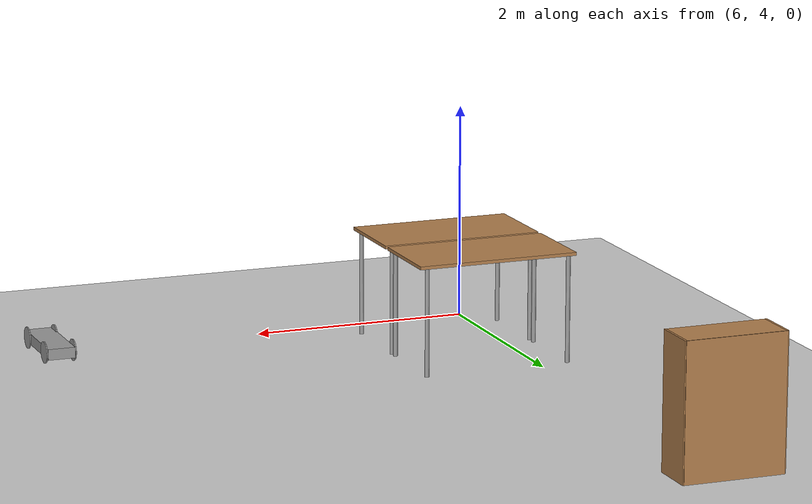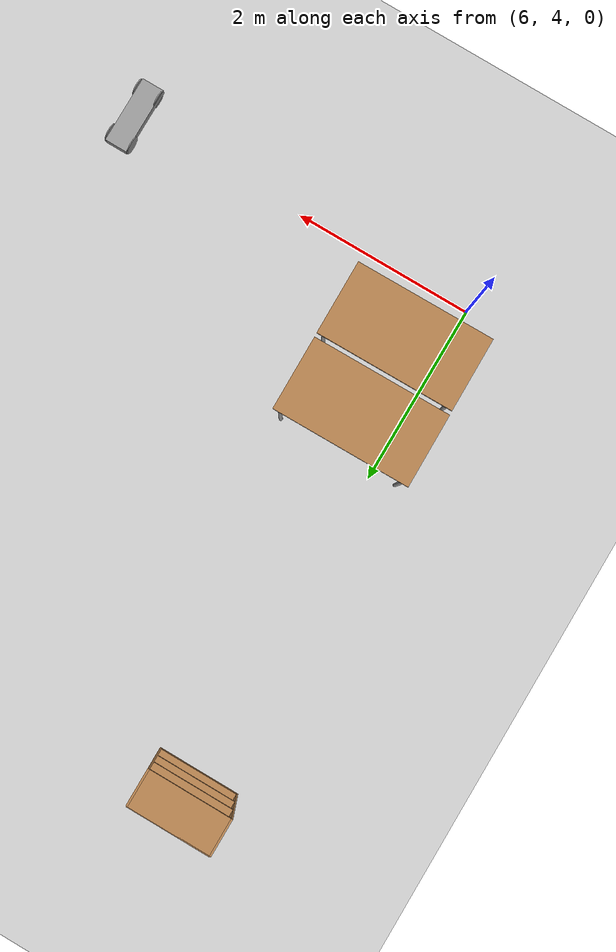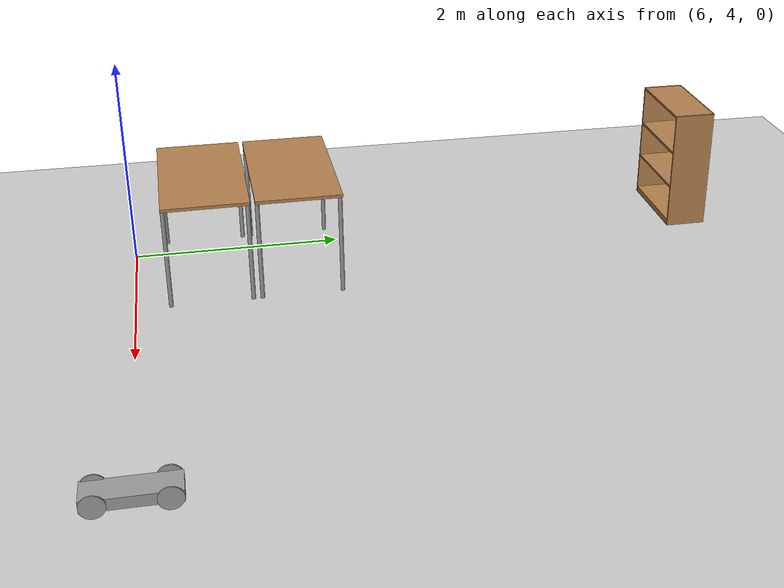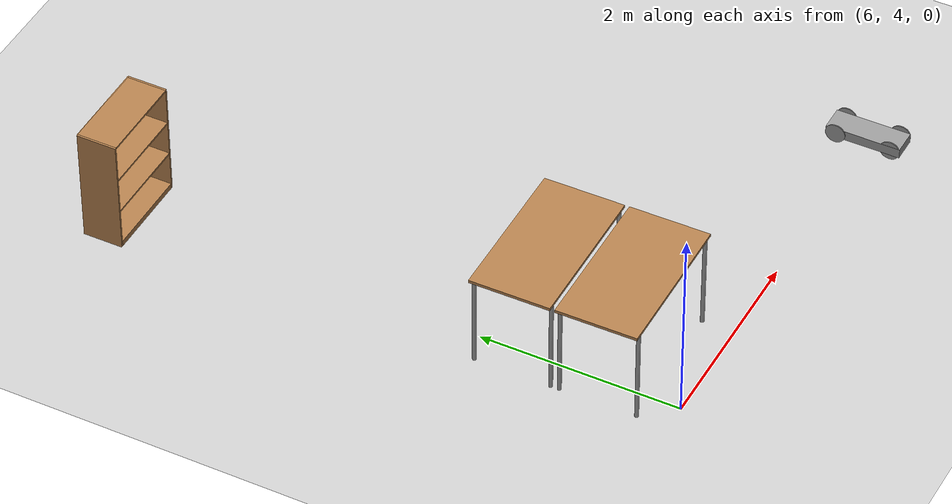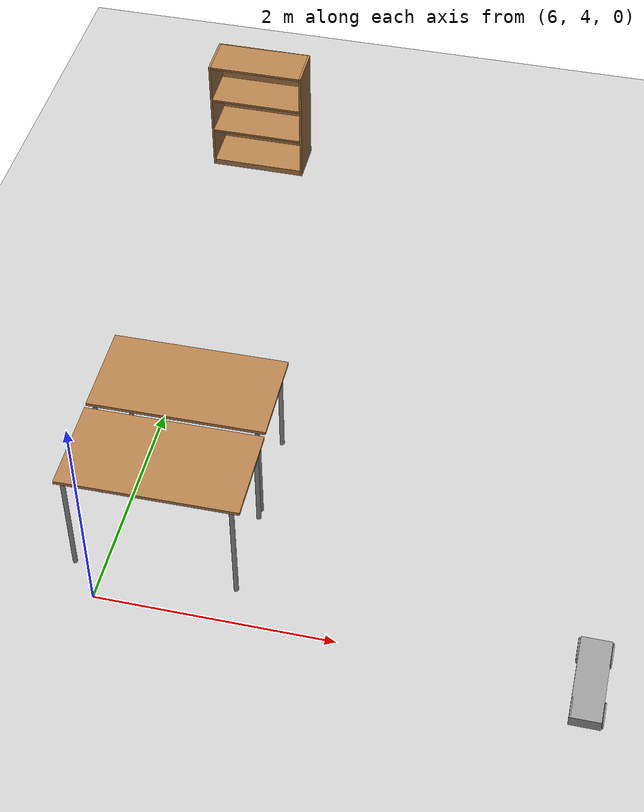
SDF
<sdf version="1.6">
 <world name="default">
  <model name="ground_plane">
   <static>1</static>
   <link name="link">
    <collision name="collision">
     <geometry><plane><normal>0 0 1</normal><size>100 100</size></plane></geometry>
     <surface>
      <contact><collide_bitmask>65535</collide_bitmask></contact>
      <friction><ode><mu>100</mu><mu2>50</mu2></ode></friction>
     </surface>
    </collision>
    <visual name="visual">
     <cast_shadows>0</cast_shadows>
     <geometry><plane><normal>0 0 1</normal><size>100 100</size></plane></geometry>
     <material>
      <script><uri>file://media/materials/scripts/gazebo.material</uri><name>Gazebo/Grey</name></script>
     </material>
    </visual>
   </link>
  </model>
  <model name="bookshelf">
   <static>1</static>
   <link name="link">
    <inertial><mass>1</mass></inertial>
    <collision name="back">
     <pose>0 0.005 0.6 0 -0 0</pose>
     <geometry><box><size>0.9 0.01 1.2</size></box></geometry>
    </collision>
    <visual name="visual1">
     <pose>0 0.005 0.6 0 -0 0</pose>
     <geometry><box><size>0.9 0.01 1.2</size></box></geometry>
     <material>
      <script><uri>file://media/materials/scripts/gazebo.material</uri><name>Gazebo/Wood</name></script>
     </material>
    </visual>
    <collision name="left_side">
     <pose>0.45 -0.195 0.6 0 -0 0</pose>
     <geometry><box><size>0.02 0.4 1.2</size></box></geometry>
    </collision>
    <visual name="visual2">
     <pose>0.45 -0.195 0.6 0 -0 0</pose>
     <geometry><box><size>0.02 0.4 1.2</size></box></geometry>
     <material>
      <script><uri>file://media/materials/scripts/gazebo.material</uri><name>Gazebo/Wood</name></script>
     </material>
    </visual>
    <collision name="right_side">
     <pose>-0.45 -0.195 0.6 0 -0 0</pose>
     <geometry><box><size>0.02 0.4 1.2</size></box></geometry>
    </collision>
    <visual name="visual3">
     <pose>-0.45 -0.195 0.6 0 -0 0</pose>
     <geometry><box><size>0.02 0.4 1.2</size></box></geometry>
     <material>
      <script><uri>file://media/materials/scripts/gazebo.material</uri><name>Gazebo/Wood</name></script>
     </material>
    </visual>
    <collision name="bottom">
     <pose>0 -0.195 0.03 0 -0 0</pose>
     <geometry><box><size>0.88 0.4 0.06</size></box></geometry>
    </collision>
    <visual name="visual4">
     <pose>0 -0.195 0.03 0 -0 0</pose>
     <geometry><box><size>0.88 0.4 0.06</size></box></geometry>
     <material>
      <script><uri>file://media/materials/scripts/gazebo.material</uri><name>Gazebo/Wood</name></script>
     </material>
    </visual>
    <collision name="top">
     <pose>0 -0.195 1.19 0 -0 0</pose>
     <geometry><box><size>0.88 0.4 0.02</size></box></geometry>
    </collision>
    <visual name="visual5">
     <pose>0 -0.195 1.19 0 -0 0</pose>
     <geometry><box><size>0.88 0.4 0.02</size></box></geometry>
     <material>
      <script><uri>file://media/materials/scripts/gazebo.material</uri><name>Gazebo/Wood</name></script>
     </material>
    </visual>
    <collision name="low_shelf">
     <pose>0 -0.195 0.43 0 -0 0</pose>
     <geometry><box><size>0.88 0.4 0.02</size></box></geometry>
    </collision>
    <visual name="visual6">
     <pose>0 -0.195 0.43 0 -0 0</pose>
     <geometry><box><size>0.88 0.4 0.02</size></box></geometry>
     <material>
      <script><uri>file://media/materials/scripts/gazebo.material</uri><name>Gazebo/Wood</name></script>
     </material>
    </visual>
    <collision name="high_shelf">
     <pose>0 -0.195 0.8 0 -0 0</pose>
     <geometry><box><size>0.88 0.4 0.02</size></box></geometry>
    </collision>
    <visual name="visual7">
     <pose>0 -0.195 0.8 0 -0 0</pose>
     <geometry><box><size>0.88 0.4 0.02</size></box></geometry>
     <material>
      <script><uri>file://media/materials/scripts/gazebo.material</uri><name>Gazebo/Wood</name></script>
     </material>
    </visual>
   </link>
   <pose>5.96907 9.82369 0.04156 0 -0 0</pose>
  </model>
  <model name="table_clone_2_clone">
   <static>1</static>
   <link name="link">
    <collision name="surface">
     <pose>0 0 1 0 -0 0</pose>
     <geometry><box><size>1.5 0.8 0.03</size></box></geometry>
     <surface><friction><ode><mu>0.6</mu><mu2>0.6</mu2></ode></friction></surface>
    </collision>
    <visual name="visual1">
     <pose>0 0 1 0 -0 0</pose>
     <geometry><box><size>1.5 0.8 0.03</size></box></geometry>
     <material>
      <script><uri>file://media/materials/scripts/gazebo.material</uri><name>Gazebo/Wood</name></script>
     </material>
    </visual>
    <collision name="front_left_leg">
     <pose>0.68 0.38 0.5 0 -0 0</pose>
     <geometry><cylinder><radius>0.02</radius><length>1</length></cylinder></geometry>
    </collision>
    <visual name="front_left_leg">
     <pose>0.68 0.38 0.5 0 -0 0</pose>
     <geometry><cylinder><radius>0.02</radius><length>1</length></cylinder></geometry>
     <material>
      <script><uri>file://media/materials/scripts/gazebo.material</uri><name>Gazebo/Grey</name></script>
     </material>
    </visual>
    <collision name="front_right_leg">
     <pose>0.68 -0.38 0.5 0 -0 0</pose>
     <geometry><cylinder><radius>0.02</radius><length>1</length></cylinder></geometry>
    </collision>
    <visual name="front_right_leg">
     <pose>0.68 -0.38 0.5 0 -0 0</pose>
     <geometry><cylinder><radius>0.02</radius><length>1</length></cylinder></geometry>
     <material>
      <script><uri>file://media/materials/scripts/gazebo.material</uri><name>Gazebo/Grey</name></script>
     </material>
    </visual>
    <collision name="back_right_leg">
     <pose>-0.68 -0.38 0.5 0 -0 0</pose>
     <geometry><cylinder><radius>0.02</radius><length>1</length></cylinder></geometry>
    </collision>
    <visual name="back_right_leg">
     <pose>-0.68 -0.38 0.5 0 -0 0</pose>
     <geometry><cylinder><radius>0.02</radius><length>1</length></cylinder></geometry>
     <material>
      <script><uri>file://media/materials/scripts/gazebo.material</uri><name>Gazebo/Grey</name></script>
     </material>
    </visual>
    <collision name="back_left_leg">
     <pose>-0.68 0.38 0.5 0 -0 0</pose>
     <geometry><cylinder><radius>0.02</radius><length>1</length></cylinder></geometry>
    </collision>
    <visual name="back_left_leg">
     <pose>-0.68 0.38 0.5 0 -0 0</pose>
     <geometry><cylinder><radius>0.02</radius><length>1</length></cylinder></geometry>
     <material>
      <script><uri>file://media/materials/scripts/gazebo.material</uri><name>Gazebo/Grey</name></script>
     </material>
    </visual>
   </link>
   <pose>6.42073 4.69703 0 0 -0 0.008376</pose>
  </model>
  <model name="table_clone_2_clone_0">
   <static>1</static>
   <link name="link">
    <collision name="surface">
     <pose>0 0 1 0 -0 0</pose>
     <geometry><box><size>1.5 0.8 0.03</size></box></geometry>
     <surface><friction><ode><mu>0.6</mu><mu2>0.6</mu2></ode></friction></surface>
    </collision>
    <visual name="visual1">
     <pose>0 0 1 0 -0 0</pose>
     <geometry><box><size>1.5 0.8 0.03</size></box></geometry>
     <material>
      <script><uri>file://media/materials/scripts/gazebo.material</uri><name>Gazebo/Wood</name></script>
     </material>
    </visual>
    <collision name="front_left_leg">
     <pose>0.68 0.38 0.5 0 -0 0</pose>
     <geometry><cylinder><radius>0.02</radius><length>1</length></cylinder></geometry>
    </collision>
    <visual name="front_left_leg">
     <pose>0.68 0.38 0.5 0 -0 0</pose>
     <geometry><cylinder><radius>0.02</radius><length>1</length></cylinder></geometry>
     <material>
      <script><uri>file://media/materials/scripts/gazebo.material</uri><name>Gazebo/Grey</name></script>
     </material>
    </visual>
    <collision name="front_right_leg">
     <pose>0.68 -0.38 0.5 0 -0 0</pose>
     <geometry><cylinder><radius>0.02</radius><length>1</length></cylinder></geometry>
    </collision>
    <visual name="front_right_leg">
     <pose>0.68 -0.38 0.5 0 -0 0</pose>
     <geometry><cylinder><radius>0.02</radius><length>1</length></cylinder></geometry>
     <material>
      <script><uri>file://media/materials/scripts/gazebo.material</uri><name>Gazebo/Grey</name></script>
     </material>
    </visual>
    <collision name="back_right_leg">
     <pose>-0.68 -0.38 0.5 0 -0 0</pose>
     <geometry><cylinder><radius>0.02</radius><length>1</length></cylinder></geometry>
    </collision>
    <visual name="back_right_leg">
     <pose>-0.68 -0.38 0.5 0 -0 0</pose>
     <geometry><cylinder><radius>0.02</radius><length>1</length></cylinder></geometry>
     <material>
      <script><uri>file://media/materials/scripts/gazebo.material</uri><name>Gazebo/Grey</name></script>
     </material>
    </visual>
    <collision name="back_left_leg">
     <pose>-0.68 0.38 0.5 0 -0 0</pose>
     <geometry><cylinder><radius>0.02</radius><length>1</length></cylinder></geometry>
    </collision>
    <visual name="back_left_leg">
     <pose>-0.68 0.38 0.5 0 -0 0</pose>
     <geometry><cylinder><radius>0.02</radius><length>1</length></cylinder></geometry>
     <material>
      <script><uri>file://media/materials/scripts/gazebo.material</uri><name>Gazebo/Grey</name></script>
     </material>
    </visual>
   </link>
   <pose>6.41159 5.54172 0 0 -0 0.008376</pose>
  </model>
  <model name="robot_1">
   <link name="link_0">
    <pose>-0.00309 4e-06 1e-06 0 -0 0</pose>
    <inertial>
     <mass>1</mass>
     <inertia>
      <ixx>0.166667</ixx>
      <ixy>0</ixy>
      <ixz>0</ixz>
      <iyy>0.166667</iyy>
      <iyz>0</iyz>
      <izz>0.166667</izz>
     </inertia>
    </inertial>
    <visual name="visual">
     <geometry><box><size>0.25 0.75 0.1</size></box></geometry>
     <material>
      <lighting>1</lighting>
      <script><uri>file://media/materials/scripts/gazebo.material</uri><name>Gazebo/Grey</name></script>
      <shader type="pixel"><normal_map>__default__</normal_map></shader>
      <ambient>0.3 0.3 0.3 1</ambient>
      <diffuse>0.7 0.7 0.7 1</diffuse>
      <specular>0.01 0.01 0.01 1</specular>
      <emissive>0 0 0 1</emissive>
     </material>
    </visual>
    <collision name="collision">
     <geometry><box><size>0.25 0.75 0.1</size></box></geometry>
     <surface>
      <friction>
       <ode><mu>1</mu><mu2>1</mu2><fdir1>0 0 0</fdir1><slip1>0</slip1><slip2>0</slip2></ode>
       <torsional>
        <coefficient>1</coefficient>
        <patch_radius>0</patch_radius>
        <surface_radius>0</surface_radius>
        <use_patch_radius>1</use_patch_radius>
        <ode><slip>0</slip></ode>
       </torsional>
      </friction>
      <bounce><restitution_coefficient>0</restitution_coefficient><threshold>1e+06</threshold></bounce>
      <contact>
       <collide_without_contact>0</collide_without_contact>
       <collide_without_contact_bitmask>1</collide_without_contact_bitmask>
       <collide_bitmask>1</collide_bitmask>
       <ode>
        <soft_cfm>0</soft_cfm>
        <soft_erp>0.2</soft_erp>
        <kp>1e+13</kp>
        <kd>1</kd>
        <max_vel>0.01</max_vel>
        <min_depth>0</min_depth>
       </ode>
       <bullet>
        <split_impulse>1</split_impulse>
        <split_impulse_penetration_threshold>-0.01</split_impulse_penetration_threshold>
        <soft_cfm>0</soft_cfm>
        <soft_erp>0.2</soft_erp>
        <kp>1e+13</kp>
        <kd>1</kd>
       </bullet>
      </contact>
     </surface>
    </collision>
   </link>
   <link name="link_1">
    <pose>-0.13658 0.274921 0 1.57079 -9.6e-05 -1.56015</pose>
    <inertial>
     <mass>1</mass>
     <inertia><ixx>0.145833</ixx><ixy>0</ixy><ixz>0</ixz><iyy>0.145833</iyy><iyz>0</iyz><izz>0.125</izz></inertia>
    </inertial>
    <visual name="visual">
     <geometry><cylinder><radius>0.1</radius><length>0.01</length></cylinder></geometry>
     <material>
      <lighting>1</lighting>
      <script><uri>file://media/materials/scripts/gazebo.material</uri><name>Gazebo/Grey</name></script>
      <shader type="pixel"><normal_map>__default__</normal_map></shader>
      <ambient>0.3 0.3 0.3 1</ambient>
      <diffuse>0.7 0.7 0.7 1</diffuse>
      <specular>0.01 0.01 0.01 1</specular>
      <emissive>0 0 0 1</emissive>
     </material>
    </visual>
    <collision name="collision">
     <geometry><cylinder><radius>0.1</radius><length>0.01</length></cylinder></geometry>
     <surface>
      <friction>
       <ode><mu>1</mu><mu2>1</mu2><fdir1>0 0 0</fdir1><slip1>0</slip1><slip2>0</slip2></ode>
       <torsional>
        <coefficient>1</coefficient>
        <patch_radius>0</patch_radius>
        <surface_radius>0</surface_radius>
        <use_patch_radius>1</use_patch_radius>
        <ode><slip>0</slip></ode>
       </torsional>
      </friction>
      <bounce><restitution_coefficient>0</restitution_coefficient><threshold>1e+06</threshold></bounce>
      <contact>
       <collide_without_contact>0</collide_without_contact>
       <collide_without_contact_bitmask>1</collide_without_contact_bitmask>
       <collide_bitmask>1</collide_bitmask>
       <ode>
        <soft_cfm>0</soft_cfm>
        <soft_erp>0.2</soft_erp>
        <kp>1e+13</kp>
        <kd>1</kd>
        <max_vel>0.01</max_vel>
        <min_depth>0</min_depth>
       </ode>
       <bullet>
        <split_impulse>1</split_impulse>
        <split_impulse_penetration_threshold>-0.01</split_impulse_penetration_threshold>
        <soft_cfm>0</soft_cfm>
        <soft_erp>0.2</soft_erp>
        <kp>1e+13</kp>
        <kd>1</kd>
       </bullet>
      </contact>
     </surface>
    </collision>
   </link>
   <link name="link_1_clone">
    <pose>-0.122025 -0.274939 -0 1.57079 -9.6e-05 -1.56015</pose>
    <inertial>
     <mass>1</mass>
     <inertia><ixx>0.145833</ixx><ixy>0</ixy><ixz>0</ixz><iyy>0.145833</iyy><iyz>0</iyz><izz>0.125</izz></inertia>
    </inertial>
    <visual name="visual">
     <geometry><cylinder><radius>0.1</radius><length>0.01</length></cylinder></geometry>
     <material>
      <lighting>1</lighting>
      <script><uri>file://media/materials/scripts/gazebo.material</uri><name>Gazebo/Grey</name></script>
      <shader type="pixel"><normal_map>__default__</normal_map></shader>
      <ambient>0.3 0.3 0.3 1</ambient>
      <diffuse>0.7 0.7 0.7 1</diffuse>
      <specular>0.01 0.01 0.01 1</specular>
      <emissive>0 0 0 1</emissive>
     </material>
    </visual>
    <collision name="collision">
     <geometry><cylinder><radius>0.1</radius><length>0.01</length></cylinder></geometry>
     <surface>
      <friction>
       <ode><mu>1</mu><mu2>1</mu2><fdir1>0 0 0</fdir1><slip1>0</slip1><slip2>0</slip2></ode>
       <torsional>
        <coefficient>1</coefficient>
        <patch_radius>0</patch_radius>
        <surface_radius>0</surface_radius>
        <use_patch_radius>1</use_patch_radius>
        <ode><slip>0</slip></ode>
       </torsional>
      </friction>
      <bounce><restitution_coefficient>0</restitution_coefficient><threshold>1e+06</threshold></bounce>
      <contact>
       <collide_without_contact>0</collide_without_contact>
       <collide_without_contact_bitmask>1</collide_without_contact_bitmask>
       <collide_bitmask>1</collide_bitmask>
       <ode>
        <soft_cfm>0</soft_cfm>
        <soft_erp>0.2</soft_erp>
        <kp>1e+13</kp>
        <kd>1</kd>
        <max_vel>0.01</max_vel>
        <min_depth>0</min_depth>
       </ode>
       <bullet>
        <split_impulse>1</split_impulse>
        <split_impulse_penetration_threshold>-0.01</split_impulse_penetration_threshold>
        <soft_cfm>0</soft_cfm>
        <soft_erp>0.2</soft_erp>
        <kp>1e+13</kp>
        <kd>1</kd>
       </bullet>
      </contact>
     </surface>
    </collision>
   </link>
   <link name="link_1_clone_0">
    <pose>0.130845 0.274947 -0 1.57079 -9.6e-05 -1.56015</pose>
    <inertial>
     <mass>1</mass>
     <inertia><ixx>0.145833</ixx><ixy>0</ixy><ixz>0</ixz><iyy>0.145833</iyy><iyz>0</iyz><izz>0.125</izz></inertia>
    </inertial>
    <visual name="visual">
     <geometry><cylinder><radius>0.1</radius><length>0.01</length></cylinder></geometry>
     <material>
      <lighting>1</lighting>
      <script><uri>file://media/materials/scripts/gazebo.material</uri><name>Gazebo/Grey</name></script>
      <shader type="pixel"><normal_map>__default__</normal_map></shader>
      <ambient>0.3 0.3 0.3 1</ambient>
      <diffuse>0.7 0.7 0.7 1</diffuse>
      <specular>0.01 0.01 0.01 1</specular>
      <emissive>0 0 0 1</emissive>
     </material>
    </visual>
    <collision name="collision">
     <geometry><cylinder><radius>0.1</radius><length>0.01</length></cylinder></geometry>
     <surface>
      <friction>
       <ode><mu>1</mu><mu2>1</mu2><fdir1>0 0 0</fdir1><slip1>0</slip1><slip2>0</slip2></ode>
       <torsional>
        <coefficient>1</coefficient>
        <patch_radius>0</patch_radius>
        <surface_radius>0</surface_radius>
        <use_patch_radius>1</use_patch_radius>
        <ode><slip>0</slip></ode>
       </torsional>
      </friction>
      <bounce><restitution_coefficient>0</restitution_coefficient><threshold>1e+06</threshold></bounce>
      <contact>
       <collide_without_contact>0</collide_without_contact>
       <collide_without_contact_bitmask>1</collide_without_contact_bitmask>
       <collide_bitmask>1</collide_bitmask>
       <ode>
        <soft_cfm>0</soft_cfm>
        <soft_erp>0.2</soft_erp>
        <kp>1e+13</kp>
        <kd>1</kd>
        <max_vel>0.01</max_vel>
        <min_depth>0</min_depth>
       </ode>
       <bullet>
        <split_impulse>1</split_impulse>
        <split_impulse_penetration_threshold>-0.01</split_impulse_penetration_threshold>
        <soft_cfm>0</soft_cfm>
        <soft_erp>0.2</soft_erp>
        <kp>1e+13</kp>
        <kd>1</kd>
       </bullet>
      </contact>
     </surface>
    </collision>
   </link>
   <link name="link_1_clone_1">
    <pose>0.130845 -0.274939 -0 1.57079 -9.6e-05 -1.56015</pose>
    <inertial>
     <mass>1</mass>
     <inertia><ixx>0.145833</ixx><ixy>0</ixy><ixz>0</ixz><iyy>0.145833</iyy><iyz>0</iyz><izz>0.125</izz></inertia>
    </inertial>
    <visual name="visual">
     <geometry><cylinder><radius>0.1</radius><length>0.01</length></cylinder></geometry>
     <material>
      <lighting>1</lighting>
      <script><uri>file://media/materials/scripts/gazebo.material</uri><name>Gazebo/Grey</name></script>
      <shader type="pixel"><normal_map>__default__</normal_map></shader>
      <ambient>0.3 0.3 0.3 1</ambient>
      <diffuse>0.7 0.7 0.7 1</diffuse>
      <specular>0.01 0.01 0.01 1</specular>
      <emissive>0 0 0 1</emissive>
     </material>
    </visual>
    <collision name="collision">
     <geometry><cylinder><radius>0.1</radius><length>0.01</length></cylinder></geometry>
     <surface>
      <friction>
       <ode><mu>1</mu><mu2>1</mu2><fdir1>0 0 0</fdir1><slip1>0</slip1><slip2>0</slip2></ode>
       <torsional>
        <coefficient>1</coefficient>
        <patch_radius>0</patch_radius>
        <surface_radius>0</surface_radius>
        <use_patch_radius>1</use_patch_radius>
        <ode><slip>0</slip></ode>
       </torsional>
      </friction>
      <bounce><restitution_coefficient>0</restitution_coefficient><threshold>1e+06</threshold></bounce>
      <contact>
       <collide_without_contact>0</collide_without_contact>
       <collide_without_contact_bitmask>1</collide_without_contact_bitmask>
       <collide_bitmask>1</collide_bitmask>
       <ode>
        <soft_cfm>0</soft_cfm>
        <soft_erp>0.2</soft_erp>
        <kp>1e+13</kp>
        <kd>1</kd>
        <max_vel>0.01</max_vel>
        <min_depth>0</min_depth>
       </ode>
       <bullet>
        <split_impulse>1</split_impulse>
        <split_impulse_penetration_threshold>-0.01</split_impulse_penetration_threshold>
        <soft_cfm>0</soft_cfm>
        <soft_erp>0.2</soft_erp>
        <kp>1e+13</kp>
        <kd>1</kd>
       </bullet>
      </contact>
     </surface>
    </collision>
   </link>
   <joint name="link_0_JOINT_0" type="revolute">
    <parent>link_0</parent>
    <child>link_1</child>
    <axis>
     <xyz>0 0 1</xyz>
     <use_parent_model_frame>0</use_parent_model_frame>
     <limit>
      <lower>-1.79769e+308</lower>
      <upper>1.79769e+308</upper>
      <effort>-1</effort>
      <velocity>-1</velocity>
     </limit>
     <dynamics>
      <spring_reference>0</spring_reference>
      <spring_stiffness>0</spring_stiffness>
      <damping>0</damping>
     </dynamics>
    </axis>
    <physics>
     <ode><limit><cfm>0</cfm><erp>0.2</erp></limit><suspension><cfm>0</cfm><erp>0.2</erp></suspension></ode>
    </physics>
   </joint>
   <joint name="link_0_JOINT_1" type="revolute">
    <parent>link_0</parent>
    <child>link_1_clone</child>
    <axis>
     <xyz>0 0 1</xyz>
     <use_parent_model_frame>0</use_parent_model_frame>
     <limit>
      <lower>-1.79769e+308</lower>
      <upper>1.79769e+308</upper>
      <effort>-1</effort>
      <velocity>-1</velocity>
     </limit>
     <dynamics>
      <spring_reference>0</spring_reference>
      <spring_stiffness>0</spring_stiffness>
      <damping>0</damping>
     </dynamics>
    </axis>
    <physics>
     <ode><limit><cfm>0</cfm><erp>0.2</erp></limit><suspension><cfm>0</cfm><erp>0.2</erp></suspension></ode>
    </physics>
   </joint>
   <joint name="link_0_JOINT_2" type="revolute">
    <parent>link_0</parent>
    <child>link_1_clone_0</child>
    <axis>
     <xyz>0 0 1</xyz>
     <use_parent_model_frame>0</use_parent_model_frame>
     <limit>
      <lower>-1.79769e+308</lower>
      <upper>1.79769e+308</upper>
      <effort>-1</effort>
      <velocity>-1</velocity>
     </limit>
     <dynamics>
      <spring_reference>0</spring_reference>
      <spring_stiffness>0</spring_stiffness>
      <damping>0</damping>
     </dynamics>
    </axis>
    <physics>
     <ode><limit><cfm>0</cfm><erp>0.2</erp></limit><suspension><cfm>0</cfm><erp>0.2</erp></suspension></ode>
    </physics>
   </joint>
   <joint name="link_0_JOINT_3" type="revolute">
    <parent>link_0</parent>
    <child>link_1_clone_1</child>
    <axis>
     <xyz>0 0 1</xyz>
     <use_parent_model_frame>0</use_parent_model_frame>
     <limit>
      <lower>-1.79769e+308</lower>
      <upper>1.79769e+308</upper>
      <effort>-1</effort>
      <velocity>-1</velocity>
     </limit>
     <dynamics>
      <spring_reference>0</spring_reference>
      <spring_stiffness>0</spring_stiffness>
      <damping>0</damping>
     </dynamics>
    </axis>
    <physics>
     <ode><limit><cfm>0</cfm><erp>0.2</erp></limit><suspension><cfm>0</cfm><erp>0.2</erp></suspension></ode>
    </physics>
   </joint>
   <static>0</static>
   <pose>10.0002 4.00001 0.099995 -1.5e-05 -6e-06 -0.001466</pose>
  </model>
 </world>
</sdf>
